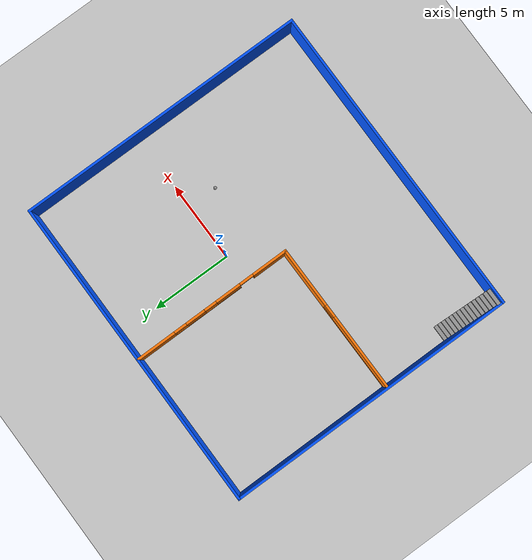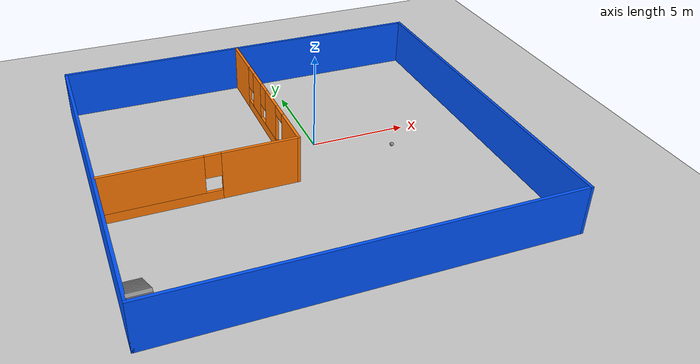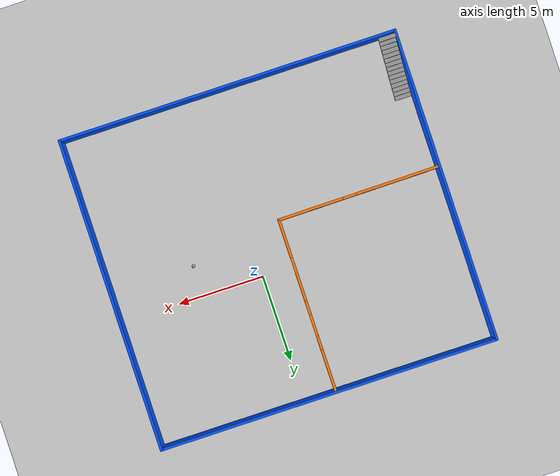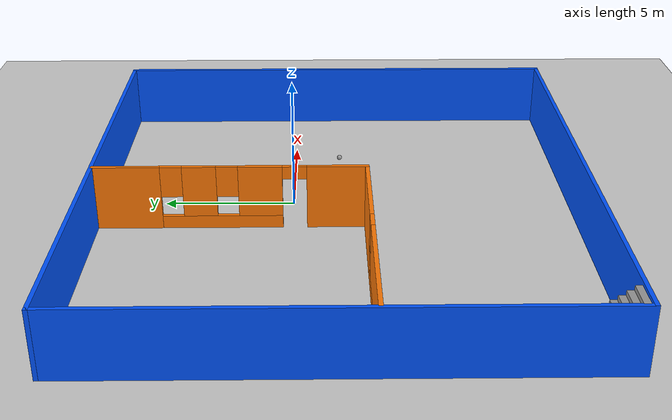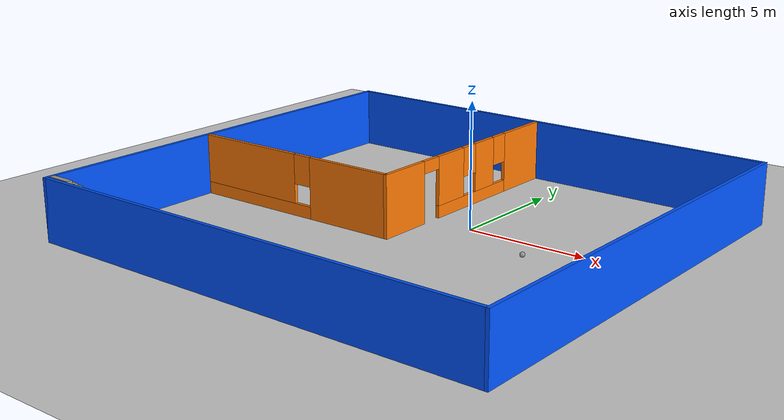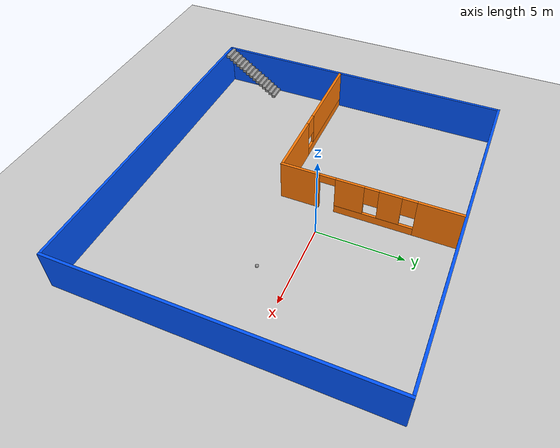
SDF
<sdf version="1.4">
 <world name="default">
  <include><uri>model://ground_plane</uri></include>
  <light name="sun" type="directional">
   <pose>0 0 10 0 -0 0</pose>
   <diffuse>0.8 0.8 0.8 1</diffuse>
   <specular>0.1 0.1 0.1 1</specular>
   <attenuation>
    <range>1000</range>
    <constant>0.9</constant>
    <linear>0.01</linear>
    <quadratic>0.001</quadratic>
   </attenuation>
   <direction>-0.5 0.5 -1</direction>
  </light>
  <model name="my_ball">
   <pose>3.555 -1.8 0.33 0 0 0</pose>
   <link name="link">
    <inertial>
     <mass>2</mass>
     <inertia><ixx>0.6</ixx><ixy>0</ixy><ixz>0</ixz><iyy>0.6</iyy><iyz>0</iyz><izz>0.2</izz></inertia>
    </inertial>
    <visual name="visual">
     <geometry><sphere><radius>0.1</radius></sphere></geometry>
     <material>
      <script><name>Gazebo/Grey</name><uri>file://media/materials/scripts/gazebo.material</uri></script>
      <shader type="pixel"><normal_map>__default__</normal_map></shader>
      <ambient>1 1 1 1</ambient>
      <diffuse>1 1 1 1</diffuse>
      <specular>1 1 1 1</specular>
      <emissive>1 1 1 1</emissive>
     </material>
    </visual>
    <collision name="collision">
     <geometry><sphere><radius>0.1</radius></sphere></geometry>
     <surface>
      <friction>
       <ode><mu>1</mu><mu2>1</mu2><fdir1>0 0 0</fdir1><slip1>0</slip1><slip2>0</slip2></ode>
       <torsional>
        <coefficient>1</coefficient>
        <patch_radius>0</patch_radius>
        <surface_radius>0</surface_radius>
        <use_patch_radius>1</use_patch_radius>
        <ode><slip>0</slip></ode>
       </torsional>
      </friction>
      <bounce><restitution_coefficient>0</restitution_coefficient><threshold>1e+06</threshold></bounce>
      <contact>
       <collide_without_contact>0</collide_without_contact>
       <collide_without_contact_bitmask>1</collide_without_contact_bitmask>
       <collide_bitmask>1</collide_bitmask>
       <ode>
        <soft_cfm>0</soft_cfm>
        <soft_erp>0.2</soft_erp>
        <kp>1e+13</kp>
        <kd>1</kd>
        <max_vel>0.01</max_vel>
        <min_depth>0</min_depth>
       </ode>
       <bullet>
        <split_impulse>1</split_impulse>
        <split_impulse_penetration_threshold>-0.01</split_impulse_penetration_threshold>
        <soft_cfm>0</soft_cfm>
        <soft_erp>0.2</soft_erp>
        <kp>1e+13</kp>
        <kd>1</kd>
       </bullet>
      </contact>
     </surface>
    </collision>
   </link>
   <static>0</static>
  </model>
  <model name="ground_plane">
   <static>1</static>
   <link name="link">
    <collision name="collision">
     <geometry><plane><normal>0 0 1</normal><size>100 100</size></plane></geometry>
     <surface><friction><ode><mu>100</mu><mu2>50</mu2></ode></friction></surface>
    </collision>
    <visual name="visual">
     <cast_shadows>0</cast_shadows>
     <geometry><plane><normal>0 0 1</normal><size>100 100</size></plane></geometry>
     <material>
      <script><uri>file://media/materials/scripts/gazebo.material</uri><name>Gazebo/Grey</name></script>
     </material>
    </visual>
   </link>
  </model>
  <gravity>0 0 -9.8</gravity>
  <magnetic_field>6e-06 2.3e-05 -4.2e-05</magnetic_field>
  <atmosphere type="adiabatic"/>
  <physics name="default_physics" default="0" type="ode">
   <max_step_size>0.001</max_step_size>
   <real_time_factor>1</real_time_factor>
   <real_time_update_rate>1000</real_time_update_rate>
  </physics>
  <scene><ambient>0.4 0.4 0.4 1</ambient><background>0.7 0.7 0.7 1</background><shadows>1</shadows></scene>
  <spherical_coordinates>
   <surface_model>EARTH_WGS84</surface_model>
   <latitude_deg>0</latitude_deg>
   <longitude_deg>0</longitude_deg>
   <elevation>0</elevation>
   <heading_deg>0</heading_deg>
  </spherical_coordinates>
  <model name="WorldModel">
   <pose>-1.45724 -1.69888 0 0 -0 0</pose>
   <link name="Stairs_0">
    <visual name="Stairs_0_Visual_0">
     <pose>-9.284 -5.52564 0.083333 0 -0 0</pose>
     <geometry><box><size>1 0.233333 0.166667</size></box></geometry>
     <material>
      <script><uri>file://media/materials/scripts/gazebo.material</uri><name>Gazebo/Grey</name></script>
      <ambient>1 1 1 1</ambient>
     </material>
    </visual>
    <collision name="Stairs_0_Collision_0">
     <geometry><box><size>1 0.233333 0.166667</size></box></geometry>
     <pose>-9.284 -5.52564 0.083333 0 -0 0</pose>
    </collision>
    <visual name="Stairs_0_Visual_1">
     <pose>-9.284 -5.75897 0.25 0 -0 0</pose>
     <geometry><box><size>1 0.233333 0.166667</size></box></geometry>
     <material>
      <script><uri>file://media/materials/scripts/gazebo.material</uri><name>Gazebo/Grey</name></script>
      <ambient>1 1 1 1</ambient>
     </material>
    </visual>
    <collision name="Stairs_0_Collision_1">
     <geometry><box><size>1 0.233333 0.166667</size></box></geometry>
     <pose>-9.284 -5.75897 0.25 0 -0 0</pose>
    </collision>
    <visual name="Stairs_0_Visual_2">
     <pose>-9.284 -5.9923 0.416667 0 -0 0</pose>
     <geometry><box><size>1 0.233333 0.166667</size></box></geometry>
     <material>
      <script><uri>file://media/materials/scripts/gazebo.material</uri><name>Gazebo/Grey</name></script>
      <ambient>1 1 1 1</ambient>
     </material>
    </visual>
    <collision name="Stairs_0_Collision_2">
     <geometry><box><size>1 0.233333 0.166667</size></box></geometry>
     <pose>-9.284 -5.9923 0.416667 0 -0 0</pose>
    </collision>
    <visual name="Stairs_0_Visual_3">
     <pose>-9.284 -6.22564 0.583333 0 -0 0</pose>
     <geometry><box><size>1 0.233333 0.166667</size></box></geometry>
     <material>
      <script><uri>file://media/materials/scripts/gazebo.material</uri><name>Gazebo/Grey</name></script>
      <ambient>1 1 1 1</ambient>
     </material>
    </visual>
    <collision name="Stairs_0_Collision_3">
     <geometry><box><size>1 0.233333 0.166667</size></box></geometry>
     <pose>-9.284 -6.22564 0.583333 0 -0 0</pose>
    </collision>
    <visual name="Stairs_0_Visual_4">
     <pose>-9.284 -6.45897 0.75 0 -0 0</pose>
     <geometry><box><size>1 0.233333 0.166667</size></box></geometry>
     <material>
      <script><uri>file://media/materials/scripts/gazebo.material</uri><name>Gazebo/Grey</name></script>
      <ambient>1 1 1 1</ambient>
     </material>
    </visual>
    <collision name="Stairs_0_Collision_4">
     <geometry><box><size>1 0.233333 0.166667</size></box></geometry>
     <pose>-9.284 -6.45897 0.75 0 -0 0</pose>
    </collision>
    <visual name="Stairs_0_Visual_5">
     <pose>-9.284 -6.6923 0.916667 0 -0 0</pose>
     <geometry><box><size>1 0.233333 0.166667</size></box></geometry>
     <material>
      <script><uri>file://media/materials/scripts/gazebo.material</uri><name>Gazebo/Grey</name></script>
      <ambient>1 1 1 1</ambient>
     </material>
    </visual>
    <collision name="Stairs_0_Collision_5">
     <geometry><box><size>1 0.233333 0.166667</size></box></geometry>
     <pose>-9.284 -6.6923 0.916667 0 -0 0</pose>
    </collision>
    <visual name="Stairs_0_Visual_6">
     <pose>-9.284 -6.92564 1.08333 0 -0 0</pose>
     <geometry><box><size>1 0.233333 0.166667</size></box></geometry>
     <material>
      <script><uri>file://media/materials/scripts/gazebo.material</uri><name>Gazebo/Grey</name></script>
      <ambient>1 1 1 1</ambient>
     </material>
    </visual>
    <collision name="Stairs_0_Collision_6">
     <geometry><box><size>1 0.233333 0.166667</size></box></geometry>
     <pose>-9.284 -6.92564 1.08333 0 -0 0</pose>
    </collision>
    <visual name="Stairs_0_Visual_7">
     <pose>-9.284 -7.15897 1.25 0 -0 0</pose>
     <geometry><box><size>1 0.233333 0.166667</size></box></geometry>
     <material>
      <script><uri>file://media/materials/scripts/gazebo.material</uri><name>Gazebo/Grey</name></script>
      <ambient>1 1 1 1</ambient>
     </material>
    </visual>
    <collision name="Stairs_0_Collision_7">
     <geometry><box><size>1 0.233333 0.166667</size></box></geometry>
     <pose>-9.284 -7.15897 1.25 0 -0 0</pose>
    </collision>
    <visual name="Stairs_0_Visual_8">
     <pose>-9.284 -7.39231 1.41667 0 -0 0</pose>
     <geometry><box><size>1 0.233333 0.166667</size></box></geometry>
     <material>
      <script><uri>file://media/materials/scripts/gazebo.material</uri><name>Gazebo/Grey</name></script>
      <ambient>1 1 1 1</ambient>
     </material>
    </visual>
    <collision name="Stairs_0_Collision_8">
     <geometry><box><size>1 0.233333 0.166667</size></box></geometry>
     <pose>-9.284 -7.39231 1.41667 0 -0 0</pose>
    </collision>
    <visual name="Stairs_0_Visual_9">
     <pose>-9.284 -7.62564 1.58333 0 -0 0</pose>
     <geometry><box><size>1 0.233333 0.166667</size></box></geometry>
     <material>
      <script><uri>file://media/materials/scripts/gazebo.material</uri><name>Gazebo/Grey</name></script>
      <ambient>1 1 1 1</ambient>
     </material>
    </visual>
    <collision name="Stairs_0_Collision_9">
     <geometry><box><size>1 0.233333 0.166667</size></box></geometry>
     <pose>-9.284 -7.62564 1.58333 0 -0 0</pose>
    </collision>
    <visual name="Stairs_0_Visual_10">
     <pose>-9.284 -7.85897 1.75 0 -0 0</pose>
     <geometry><box><size>1 0.233333 0.166667</size></box></geometry>
     <material>
      <script><uri>file://media/materials/scripts/gazebo.material</uri><name>Gazebo/Grey</name></script>
      <ambient>1 1 1 1</ambient>
     </material>
    </visual>
    <collision name="Stairs_0_Collision_10">
     <geometry><box><size>1 0.233333 0.166667</size></box></geometry>
     <pose>-9.284 -7.85897 1.75 0 -0 0</pose>
    </collision>
    <visual name="Stairs_0_Visual_11">
     <pose>-9.284 -8.0923 1.91667 0 -0 0</pose>
     <geometry><box><size>1 0.233333 0.166667</size></box></geometry>
     <material>
      <script><uri>file://media/materials/scripts/gazebo.material</uri><name>Gazebo/Grey</name></script>
      <ambient>1 1 1 1</ambient>
     </material>
    </visual>
    <collision name="Stairs_0_Collision_11">
     <geometry><box><size>1 0.233333 0.166667</size></box></geometry>
     <pose>-9.284 -8.0923 1.91667 0 -0 0</pose>
    </collision>
    <visual name="Stairs_0_Visual_12">
     <pose>-9.284 -8.32564 2.08333 0 -0 0</pose>
     <geometry><box><size>1 0.233333 0.166667</size></box></geometry>
     <material>
      <script><uri>file://media/materials/scripts/gazebo.material</uri><name>Gazebo/Grey</name></script>
      <ambient>1 1 1 1</ambient>
     </material>
    </visual>
    <collision name="Stairs_0_Collision_12">
     <geometry><box><size>1 0.233333 0.166667</size></box></geometry>
     <pose>-9.284 -8.32564 2.08333 0 -0 0</pose>
    </collision>
    <visual name="Stairs_0_Visual_13">
     <pose>-9.284 -8.55897 2.25 0 -0 0</pose>
     <geometry><box><size>1 0.233333 0.166667</size></box></geometry>
     <material>
      <script><uri>file://media/materials/scripts/gazebo.material</uri><name>Gazebo/Grey</name></script>
      <ambient>1 1 1 1</ambient>
     </material>
    </visual>
    <collision name="Stairs_0_Collision_13">
     <geometry><box><size>1 0.233333 0.166667</size></box></geometry>
     <pose>-9.284 -8.55897 2.25 0 -0 0</pose>
    </collision>
    <visual name="Stairs_0_Visual_14">
     <pose>-9.284 -8.79231 2.41667 0 -0 0</pose>
     <geometry><box><size>1 0.233333 0.166667</size></box></geometry>
     <material>
      <script><uri>file://media/materials/scripts/gazebo.material</uri><name>Gazebo/Grey</name></script>
      <ambient>1 1 1 1</ambient>
     </material>
    </visual>
    <collision name="Stairs_0_Collision_14">
     <geometry><box><size>1 0.233333 0.166667</size></box></geometry>
     <pose>-9.284 -8.79231 2.41667 0 -0 0</pose>
    </collision>
   </link>
   <link name="Wall_2">
    <collision name="Wall_2_Collision">
     <geometry><box><size>18.25 0.15 2.5</size></box></geometry>
     <pose>0 0 1.25 0 -0 0</pose>
    </collision>
    <visual name="Wall_2_Visual">
     <pose>0 0 1.25 0 -0 0</pose>
     <geometry><box><size>18.25 0.15 2.5</size></box></geometry>
     <material>
      <script><uri>file://media/materials/scripts/gazebo.material</uri><name>Gazebo/Grey</name></script>
      <ambient>0 0.33333 1 1</ambient>
     </material>
    </visual>
    <pose>-9.82344 0 0 0 0 -1.5708</pose>
   </link>
   <link name="Wall_3">
    <collision name="Wall_3_Collision">
     <geometry><box><size>19.6554 0.15 2.5</size></box></geometry>
     <pose>0 0 1.25 0 -0 0</pose>
    </collision>
    <visual name="Wall_3_Visual">
     <pose>0 0 1.25 0 -0 0</pose>
     <geometry><box><size>19.6554 0.15 2.5</size></box></geometry>
     <material>
      <script><uri>file://media/materials/scripts/gazebo.material</uri><name>Gazebo/Grey</name></script>
      <ambient>0 0.33333 1 1</ambient>
     </material>
    </visual>
    <pose>-0.070757 -9.05 0 0 -0 0</pose>
   </link>
   <link name="Wall_4">
    <collision name="Wall_4_Collision">
     <geometry><box><size>18.25 0.15 2.5</size></box></geometry>
     <pose>0 0 1.25 0 -0 0</pose>
    </collision>
    <visual name="Wall_4_Visual">
     <pose>0 0 1.25 0 -0 0</pose>
     <geometry><box><size>18.25 0.15 2.5</size></box></geometry>
     <material>
      <script><uri>file://media/materials/scripts/gazebo.material</uri><name>Gazebo/Grey</name></script>
      <ambient>0 0.33333 1 1</ambient>
     </material>
    </visual>
    <pose>9.82344 0 0 0 -0 1.5708</pose>
   </link>
   <link name="Wall_5">
    <collision name="Wall_5_Collision">
     <geometry><box><size>19.6554 0.15 2.5</size></box></geometry>
     <pose>0 0 1.25 0 -0 0</pose>
    </collision>
    <visual name="Wall_5_Visual">
     <pose>0 0 1.25 0 -0 0</pose>
     <geometry><box><size>19.6554 0.15 2.5</size></box></geometry>
     <material>
      <script><uri>file://media/materials/scripts/gazebo.material</uri><name>Gazebo/Grey</name></script>
      <ambient>0 0.33333 1 1</ambient>
     </material>
    </visual>
    <pose>-0.070757 9.05 0 0 -0 3.14159</pose>
   </link>
   <link name="Wall_7">
    <pose>-0.404125 3.96134 0 0 0 -1.56908</pose>
    <visual name="Wall_7_Visual_0">
     <pose>-3.83767 0 1.25 0 -0 0</pose>
     <geometry><box><size>2.51047 0.15 2.5</size></box></geometry>
     <material>
      <script><uri>file://media/materials/scripts/gazebo.material</uri><name>Gazebo/Grey</name></script>
      <ambient>0.9960 0.4745 0.01960 1</ambient>
     </material>
    </visual>
    <collision name="Wall_7_Collision_0">
     <geometry><box><size>2.51047 0.15 2.5</size></box></geometry>
     <pose>-3.83767 0 1.25 0 -0 0</pose>
    </collision>
    <visual name="Wall_7_Visual_1">
     <pose>3.94476 0 1.25 0 -0 0</pose>
     <geometry><box><size>2.2963 0.15 2.5</size></box></geometry>
     <material>
      <script><uri>file://media/materials/scripts/gazebo.material</uri><name>Gazebo/Grey</name></script>
      <ambient>0.9960 0.4745 0.01960 1</ambient>
     </material>
    </visual>
    <collision name="Wall_7_Collision_1">
     <geometry><box><size>2.2963 0.15 2.5</size></box></geometry>
     <pose>3.94476 0 1.25 0 -0 0</pose>
    </collision>
    <visual name="Wall_7_Visual_2">
     <pose>-0.342911 0 0.25 0 -0 0</pose>
     <geometry><box><size>4.47905 0.15 0.5</size></box></geometry>
     <material>
      <script><uri>file://media/materials/scripts/gazebo.material</uri><name>Gazebo/Grey</name></script>
      <ambient>0.9960 0.4745 0.01960 1</ambient>
     </material>
    </visual>
    <collision name="Wall_7_Collision_2">
     <geometry><box><size>4.47905 0.15 0.5</size></box></geometry>
     <pose>-0.342911 0 0.25 0 -0 0</pose>
    </collision>
    <visual name="Wall_7_Visual_3">
     <pose>-1.15622 0 1.5 0 -0 0</pose>
     <geometry><box><size>1.25244 0.15 2</size></box></geometry>
     <material>
      <script><uri>file://media/materials/scripts/gazebo.material</uri><name>Gazebo/Grey</name></script>
      <ambient>0.9960 0.4745 0.01960 1</ambient>
     </material>
    </visual>
    <collision name="Wall_7_Collision_3">
     <geometry><box><size>1.25244 0.15 2</size></box></geometry>
     <pose>-1.15622 0 1.5 0 -0 0</pose>
    </collision>
    <visual name="Wall_7_Visual_4">
     <pose>1.08331 0 1.5 0 -0 0</pose>
     <geometry><box><size>1.62661 0.15 2</size></box></geometry>
     <material>
      <script><uri>file://media/materials/scripts/gazebo.material</uri><name>Gazebo/Grey</name></script>
      <ambient>0.9960 0.4745 0.01960 1</ambient>
     </material>
    </visual>
    <collision name="Wall_7_Collision_4">
     <geometry><box><size>1.62661 0.15 2</size></box></geometry>
     <pose>1.08331 0 1.5 0 -0 0</pose>
    </collision>
    <visual name="Wall_7_Visual_5">
     <pose>-2.18244 0 1.9 0 -0 0</pose>
     <geometry><box><size>0.8 0.15 1.2</size></box></geometry>
     <material>
      <script><uri>file://media/materials/scripts/gazebo.material</uri><name>Gazebo/Grey</name></script>
      <ambient>0.9960 0.4745 0.01960 1</ambient>
     </material>
    </visual>
    <collision name="Wall_7_Collision_5">
     <geometry><box><size>0.8 0.15 1.2</size></box></geometry>
     <pose>-2.18244 0 1.9 0 -0 0</pose>
    </collision>
    <visual name="Wall_7_Visual_6">
     <pose>-0.13 0 1.9 0 -0 0</pose>
     <geometry><box><size>0.8 0.15 1.2</size></box></geometry>
     <material>
      <script><uri>file://media/materials/scripts/gazebo.material</uri><name>Gazebo/Grey</name></script>
      <ambient>0.9960 0.4745 0.01960 1</ambient>
     </material>
    </visual>
    <collision name="Wall_7_Collision_6">
     <geometry><box><size>0.8 0.15 1.2</size></box></geometry>
     <pose>-0.13 0 1.9 0 -0 0</pose>
    </collision>
    <visual name="Wall_7_Visual_7">
     <pose>2.34661 0 2.25 0 -0 0</pose>
     <geometry><box><size>0.9 0.15 0.5</size></box></geometry>
     <material>
      <script><uri>file://media/materials/scripts/gazebo.material</uri><name>Gazebo/Grey</name></script>
      <ambient>0.9960 0.4745 0.01960 1</ambient>
     </material>
    </visual>
    <collision name="Wall_7_Collision_7">
     <geometry><box><size>0.9 0.15 0.5</size></box></geometry>
     <pose>2.34661 0 2.25 0 -0 0</pose>
    </collision>
   </link>
   <link name="Wall_8">
    <pose>-5.0902 -1.08332 0 0 0 -3.13581</pose>
    <visual name="Wall_8_Visual_0">
     <pose>-2.82279 0 1.25 0 -0 0</pose>
     <geometry><box><size>3.75246 0.15 2.5</size></box></geometry>
     <material>
      <script><uri>file://media/materials/scripts/gazebo.material</uri><name>Gazebo/Grey</name></script>
      <ambient>0.9960 0.4745 0.01960 1</ambient>
     </material>
    </visual>
    <collision name="Wall_8_Collision_0">
     <geometry><box><size>3.75246 0.15 2.5</size></box></geometry>
     <pose>-2.82279 0 1.25 0 -0 0</pose>
    </collision>
    <visual name="Wall_8_Visual_1">
     <pose>1.87623 0 0.25 0 -0 0</pose>
     <geometry><box><size>5.64558 0.15 0.5</size></box></geometry>
     <material>
      <script><uri>file://media/materials/scripts/gazebo.material</uri><name>Gazebo/Grey</name></script>
      <ambient>0.9960 0.4745 0.01960 1</ambient>
     </material>
    </visual>
    <collision name="Wall_8_Collision_1">
     <geometry><box><size>5.64558 0.15 0.5</size></box></geometry>
     <pose>1.87623 0 0.25 0 -0 0</pose>
    </collision>
    <visual name="Wall_8_Visual_2">
     <pose>2.27623 0 1.5 0 -0 0</pose>
     <geometry><box><size>4.84558 0.15 2</size></box></geometry>
     <material>
      <script><uri>file://media/materials/scripts/gazebo.material</uri><name>Gazebo/Grey</name></script>
      <ambient>0.9960 0.4745 0.01960 1</ambient>
     </material>
    </visual>
    <collision name="Wall_8_Collision_2">
     <geometry><box><size>4.84558 0.15 2</size></box></geometry>
     <pose>2.27623 0 1.5 0 -0 0</pose>
    </collision>
    <visual name="Wall_8_Visual_3">
     <pose>-0.546557 0 1.9 0 -0 0</pose>
     <geometry><box><size>0.8 0.15 1.2</size></box></geometry>
     <material>
      <script><uri>file://media/materials/scripts/gazebo.material</uri><name>Gazebo/Grey</name></script>
      <ambient>0.9960 0.4745 0.01960 1</ambient>
     </material>
    </visual>
    <collision name="Wall_8_Collision_3">
     <geometry><box><size>0.8 0.15 1.2</size></box></geometry>
     <pose>-0.546557 0 1.9 0 -0 0</pose>
    </collision>
   </link>
   <static>1</static>
  </model>
 </world>
</sdf>
